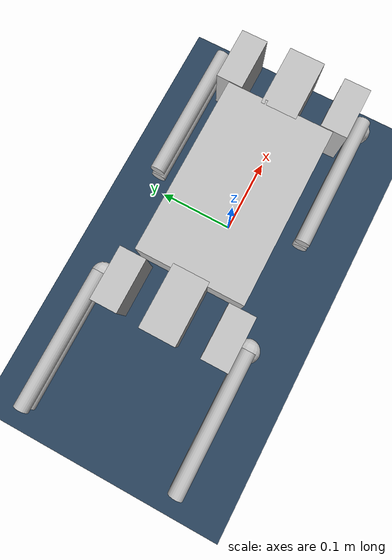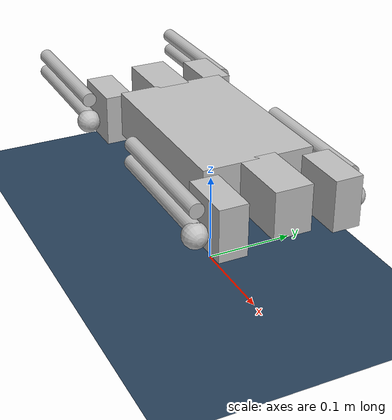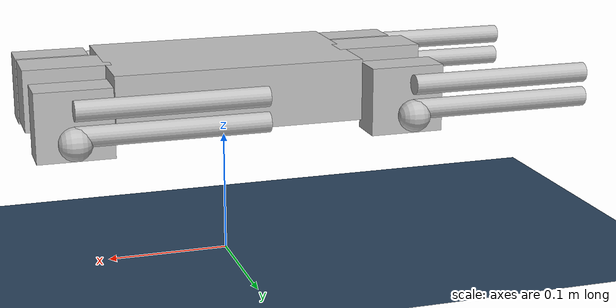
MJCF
<mujoco model="chitrak_description">
  <compiler angle="radian"/>

  <option timestep="0.005"/>

  <visual>
    <headlight ambient="0.4 0.4 0.4" diffuse="0.6 0.6 0.6"/>
  </visual>

  <asset>
    <texture type="skybox" builtin="gradient" rgb1="0.3 0.5 0.7" rgb2="0 0 0" width="512" height="512"/>
    <texture type="2d" name="groundplane" builtin="checker" mark="edge" rgb1="0.2 0.3 0.4" rgb2="0.1 0.2 0.3"
      markrgb="0.8 0.8 0.8" width="300" height="300"/>
    <material name="groundplane" texture="groundplane" texuniform="true" texrepeat="5 5" reflectance="0.0"/>
  </asset>

  <worldbody>
    <light pos="0 0 2" dir="0 0 -1" diffuse="0.8 0.8 0.8"/>
    <light pos="1 1 2" dir="-1 -1 -1" diffuse="0.4 0.4 0.4"/>
    <geom name="floor" type="plane" size="3 3 0.1" material="groundplane"/>

    <body name="torso_link" pos="0 0 0.17">
      <joint name="root_z" type="slide" axis="0 0 1"/>
      <inertial pos="-0.00238869 -0.0000123102 -0.0259411" mass="0.531018"
        diaginertia="0.000784647 0.000983761 0.00139027"/>
      <geom size="0.1 0.06 0.025" pos="0 0 -0.025" type="box" rgba="0.752941 0.752941 0.752941 1"/>
      <geom size="0.035 0.02 0.025" pos="-0.13 0 -0.025" type="box" rgba="0.752941 0.752941 0.752941 1"/>
      <geom size="0.035 0.02 0.025" pos="0.13 0 -0.025" type="box" rgba="0.752941 0.752941 0.752941 1"/>
      <body name="fr_hip_link" pos="0.1034 -0.0557689 -0.018465">
        <inertial pos="0.0322826 -0.000429461 -0.0140006" quat="0.501642 0.496046 0.503748 0.49853" mass="0.108649" diaginertia="4.61686e-05 4.28729e-05 2.69799e-05"/>
        <joint name="fr_hip_roll_joint" pos="0 0 0" axis="1 0 0" range="-1.57 1.57" actuatorfrcrange="-2.5 2.5"/>
        <geom size="0.03 0.015 0.0275" pos="0.03 -0.005 -0.014" type="box" rgba="0.752941 0.752941 0.752941 1"/>
        <body name="fr_thigh_link" pos="0.022055 -0.021 0.00041">
          <inertial pos="-0.0626115 -0.00685326 5.47714e-08" quat="0.503713 0.503724 0.496248 0.496259" mass="0.0357823" diaginertia="1.62922e-05 1.5657e-05 1.82581e-06"/>
          <joint name="fr_hip_pitch_joint" pos="0 0 0" axis="0 -1 0" range="0 3.14" actuatorfrcrange="-2.5 2.5"/>
          <geom size="0.008 0.075" pos="-0.065 -0.007 0" quat="0.707388 0 -0.706825 0" type="cylinder" rgba="0.752941 0.752941 0.752941 1"/>
          <body name="fr_calf_link" pos="-0.13 5e-05 0">
            <inertial pos="0.0724501 -0.00768914 -0.0161896" quat="0.181537 0.744111 0.262615 0.586836" mass="0.0489997" diaginertia="3.66748e-05 3.59051e-05 5.09399e-06"/>
            <joint name="fr_knee_joint" pos="0 0 0" axis="0 -1 0" range="-3.14 0" actuatorfrcrange="-2.5 2.5"/>
            <geom size="0.008 0.075" pos="0.065 -0.008 -0.02" quat="0.707388 0 0.706825 0" type="cylinder" rgba="0.752941 0.752941 0.752941 1"/>
            <geom size="0.013" pos="0.14 -0.009 -0.025" quat="0.707388 0 0.706825 0" rgba="0.752941 0.752941 0.752941 1"/>
          </body>
        </body>
      </body>
      <body name="fl_hip_link" pos="0.1034 0.0557689 -0.018465">
        <inertial pos="0.0319882 0.000410061 -0.0140991" quat="0.501243 0.501038 0.49882 0.498893" mass="0.108543" diaginertia="4.61468e-05 4.28245e-05 2.69788e-05"/>
        <joint name="fl_hip_roll_joint" pos="0 0 0" axis="1 0 0" range="-1.57 1.57" actuatorfrcrange="-2.5 2.5"/>
        <geom size="0.03 0.015 0.0275" pos="0.03 0.005 -0.014" type="box" rgba="0.752941 0.752941 0.752941 1"/>
        <body name="fl_thigh_link" pos="0.021575 0.021 0">
          <inertial pos="-0.062611 0.0068533 -5.4771e-08" quat="0.496248 0.496259 0.503713 0.503724" mass="0.035782" diaginertia="1.62922e-05 1.5657e-05 1.82578e-06"/>
          <joint name="fl_hip_pitch_joint" pos="0 0 0" axis="0 1 0" range="-3.14 0" actuatorfrcrange="-2.5 2.5"/>
          <geom size="0.008 0.075" pos="-0.065 0.007 0" quat="0.707388 0 -0.706825 0" type="cylinder" rgba="0.75294 0.75294 0.75294 1"/>
          <body name="fl_calf_link" pos="-0.13 -5e-05 0">
            <inertial pos="0.0724809 0.00768626 -0.0162002" quat="-0.181543 0.74392 -0.262765 0.58701" mass="0.0489855" diaginertia="3.66302e-05 3.58563e-05 5.08653e-06"/>
            <joint name="fl_knee_joint" pos="0 0 0" axis="0 1 0" range="0 3.14" actuatorfrcrange="-2.5 2.5"/>
            <geom size="0.008 0.075" pos="0.065 0.008 -0.02" quat="0.707388 0 0.706825 0" type="cylinder" rgba="0.752941 0.752941 0.752941 1"/>
            <geom size="0.013" pos="0.14 0.009 -0.025" quat="0.707388 0 0.706825 0" rgba="0.752941 0.752941 0.752941 1"/>
          </body>
        </body>
      </body>
      <body name="br_hip_link" pos="-0.1034 -0.0557689 -0.018465">
        <inertial pos="-0.0321355 -0.000410061 -0.0139732" quat="0.501038 0.501243 0.498893 0.49882" mass="0.108543" diaginertia="4.61468e-05 4.28245e-05 2.69788e-05"/>
        <joint name="br_hip_roll_joint" pos="0 0 0" axis="-1 0 0" range="-1.57 1.57" actuatorfrcrange="-2.5 2.5"/>
        <geom size="0.03 0.015 0.0275" pos="-0.03 -0.005 -0.014" type="box" rgba="0.752941 0.752941 0.752941 1"/>
        <body name="br_thigh_link" pos="-0.041945 -0.021 0.00041">
          <inertial pos="-0.0626115 -0.00685326 5.47714e-08" quat="0.503713 0.503724 0.496248 0.496259" mass="0.0357823" diaginertia="1.62922e-05 1.5657e-05 1.82581e-06"/>
          <joint name="br_hip_pitch_joint" pos="0 0 0" axis="0 -1 0" range="0 3.14" actuatorfrcrange="-2.5 2.5"/>
          <geom size="0.008 0.075" pos="-0.065 -0.007 0" quat="0.707388 0 0.706825 0" type="cylinder" rgba="0.752941 0.752941 0.752941 1"/>
          <body name="br_calf_link" pos="-0.13 5e-05 0">
            <inertial pos="0.0724501 -0.00768914 -0.0161896" quat="0.181537 0.744111 0.262615 0.586836" mass="0.0489997" diaginertia="3.66748e-05 3.59051e-05 5.09399e-06"/>
            <joint name="br_knee_joint" pos="0 0 0" axis="0 -1 0" range="-3.14 0" actuatorfrcrange="-2.5 2.5"/>
            <geom size="0.008 0.075" pos="0.065 -0.008 -0.02" quat="0.707388 0 0.706825 0" type="cylinder" rgba="0.752941 0.752941 0.752941 1"/>
            <geom size="0.013" pos="0.14 -0.009 -0.025" quat="0.707388 0 0.706825 0" rgba="0.752941 0.752941 0.752941 1"/>
          </body>
        </body>
      </body>
      <body name="bl_hip_link" pos="-0.1034 0.055769 -0.018465">
        <inertial pos="-0.0319882 0.000429461 -0.0140006" quat="0.496046 0.501642 0.49853 0.503748" mass="0.108649" diaginertia="4.61686e-05 4.28729e-05 2.69799e-05"/>
        <joint name="bl_hip_roll_joint" pos="0 0 0" axis="-1 0 0" range="-1.57 1.57" actuatorfrcrange="-2.5 2.5"/>
        <geom size="0.03 0.015 0.0275" pos="-0.03 0.005 -0.014" type="box" rgba="0.752941 0.752941 0.752941 1"/>
        <body name="bl_thigh_link" pos="-0.041945 0.021 0.00041">
          <inertial pos="-0.0626115 0.00685326 -5.47714e-08" quat="0.496248 0.496259 0.503713 0.503724" mass="0.0357823" diaginertia="1.62922e-05 1.5657e-05 1.82581e-06"/>
          <joint name="bl_hip_pitch_joint" pos="0 0 0" axis="0 1 0" range="-3.14 0" actuatorfrcrange="-2.5 2.5"/>
          <geom size="0.008 0.075" pos="-0.065 0.007 0" quat="0.707388 0 -0.706825 0" type="cylinder" rgba="0.752941 0.752941 0.752941 1"/>
          <body name="bl_calf_link" pos="-0.13 -5e-05 0">
            <inertial pos="0.0724809 0.00768626 -0.0162002" quat="-0.181543 0.74392 -0.262765 0.58701" mass="0.0489855" diaginertia="3.66302e-05 3.58563e-05 5.08653e-06"/>
            <joint name="bl_knee_joint" pos="0 0 0" axis="0 1 0" range="0 3.14" actuatorfrcrange="-2.5 2.5"/>
            <geom size="0.008 0.075" pos="0.065 0.008 -0.02" quat="0.707388 0 0.706825 0" type="cylinder" rgba="0.752941 0.752941 0.752941 1"/>
            <geom size="0.013" pos="0.14 0.009 -0.025" quat="0.707388 0 0.706825 0" rgba="0.752941 0.752941 0.752941 1"/>
          </body>
        </body>
      </body>
    </body>
  </worldbody>

  <actuator>
    <!-- matches Isaac Lab's DCMotorCfg: stiffness=10, damping=0.5, effort_limit=saturation_effort=2.5 -->
    <position name="fr_hip_roll_joint" joint="fr_hip_roll_joint" kp="10" kv="0.5" forcerange="-2.5 2.5" ctrlrange="-1.57 1.57"/>
    <position name="fr_hip_pitch_joint" joint="fr_hip_pitch_joint" kp="10" kv="0.5" forcerange="-2.5 2.5" ctrlrange="0 3.14"/>
    <position name="fr_knee_joint" joint="fr_knee_joint" kp="10" kv="0.5" forcerange="-2.5 2.5" ctrlrange="-3.14 0"/>
    <position name="fl_hip_roll_joint" joint="fl_hip_roll_joint" kp="10" kv="0.5" forcerange="-2.5 2.5" ctrlrange="-1.57 1.57"/>
    <position name="fl_hip_pitch_joint" joint="fl_hip_pitch_joint" kp="10" kv="0.5" forcerange="-2.5 2.5" ctrlrange="-3.14 0"/>
    <position name="fl_knee_joint" joint="fl_knee_joint" kp="10" kv="0.5" forcerange="-2.5 2.5" ctrlrange="0 3.14"/>
    <position name="br_hip_roll_joint" joint="br_hip_roll_joint" kp="10" kv="0.5" forcerange="-2.5 2.5" ctrlrange="-1.57 1.57"/>
    <position name="br_hip_pitch_joint" joint="br_hip_pitch_joint" kp="10" kv="0.5" forcerange="-2.5 2.5" ctrlrange="0 3.14"/>
    <position name="br_knee_joint" joint="br_knee_joint" kp="10" kv="0.5" forcerange="-2.5 2.5" ctrlrange="-3.14 0"/>
    <position name="bl_hip_roll_joint" joint="bl_hip_roll_joint" kp="10" kv="0.5" forcerange="-2.5 2.5" ctrlrange="-1.57 1.57"/>
    <position name="bl_hip_pitch_joint" joint="bl_hip_pitch_joint" kp="10" kv="0.5" forcerange="-2.5 2.5" ctrlrange="-3.14 0"/>
    <position name="bl_knee_joint" joint="bl_knee_joint" kp="10" kv="0.5" forcerange="-2.5 2.5" ctrlrange="0 3.14"/>
  </actuator>
</mujoco>
